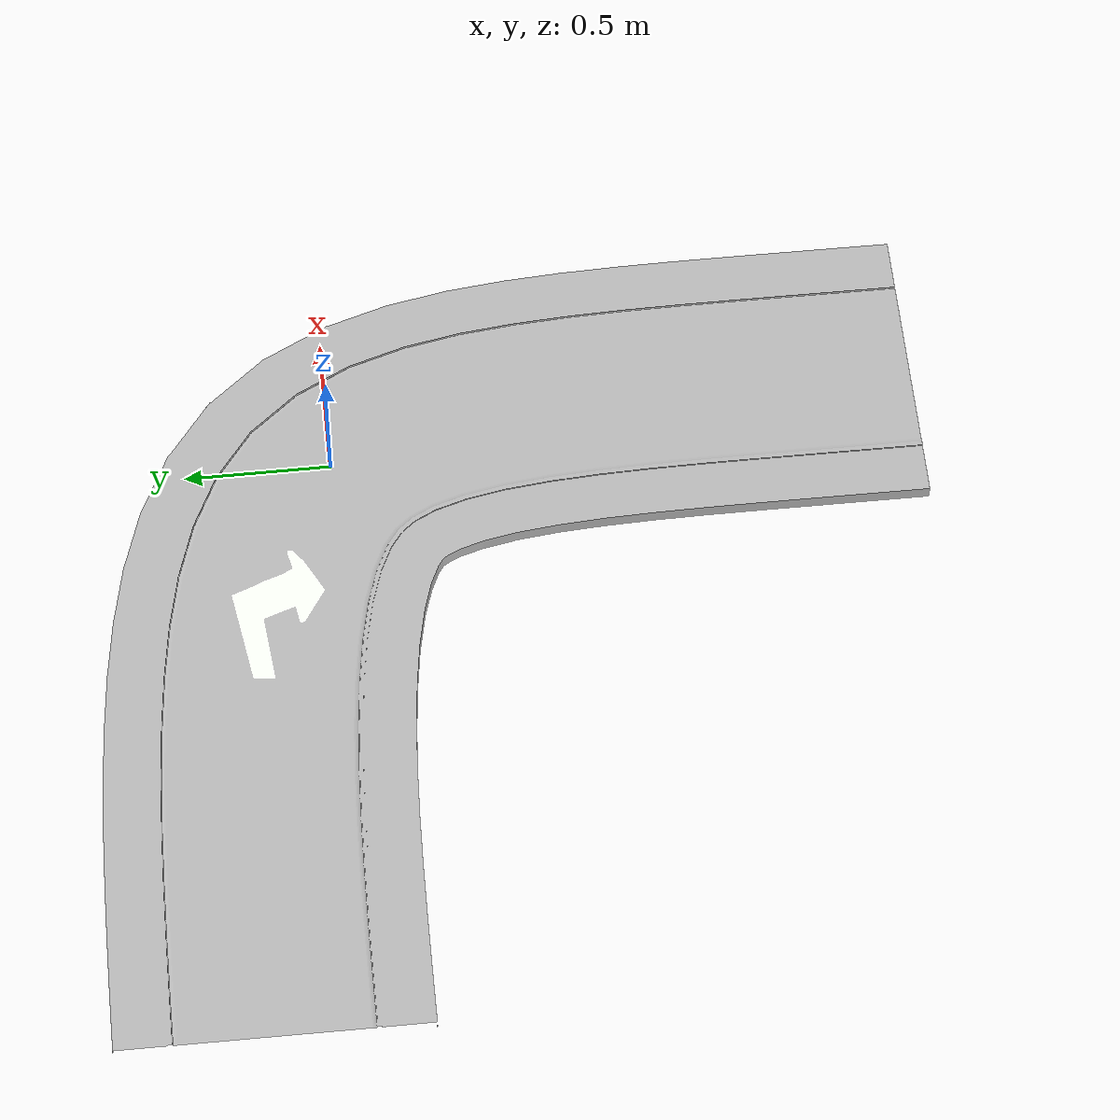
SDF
<?xml version="1.0"?>
<sdf version="1.9">
  <model name="RightTurn Road">
    <static>true</static>
    <link name="link">
      <collision name="collision">
        <geometry>
          <mesh>
            <scale>0.05 0.05 0.05</scale>
            <uri>model://Circuito/RightTurn Road/meshes/RightTurn.dae</uri>
          </mesh>
        </geometry>
      </collision>
      <visual name="road">
        <geometry>
          <mesh>
            <scale>0.05 0.05 0.05</scale>
            <uri>model://Circuito/RightTurn Road/meshes/RightTurn.dae</uri>
          </mesh>
        </geometry>
      </visual>
    </link>
  </model>
</sdf>
